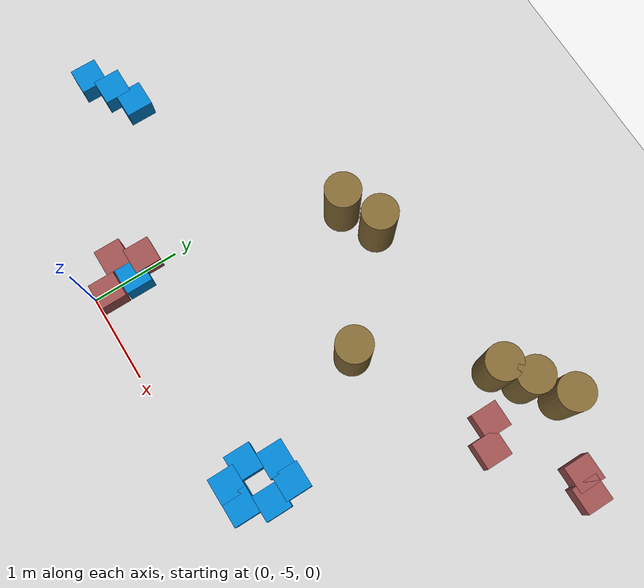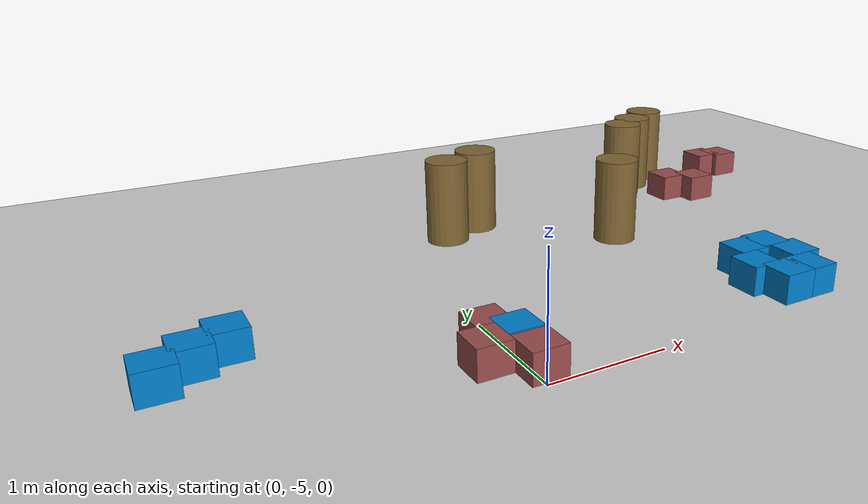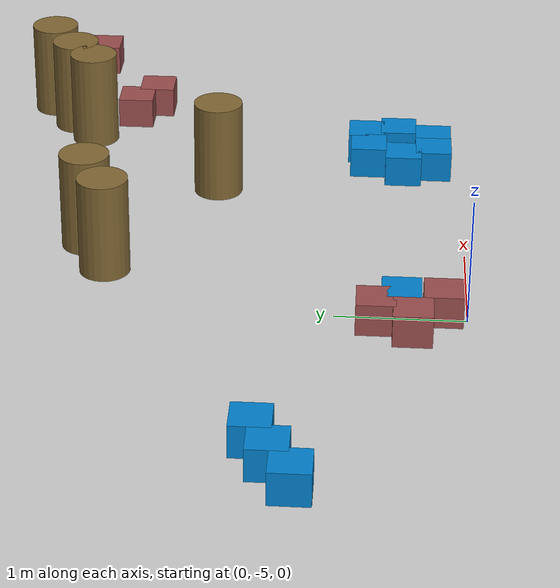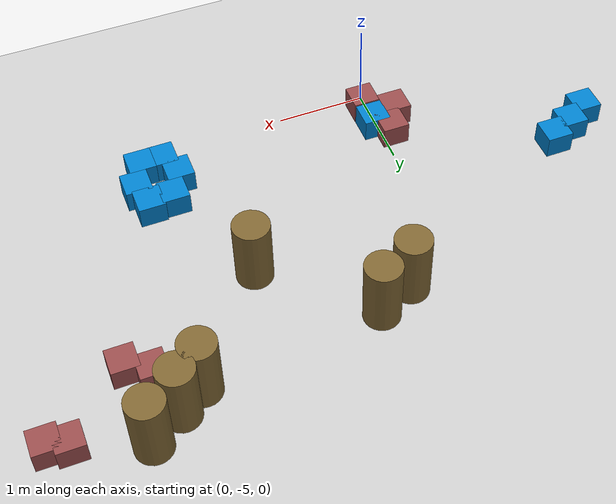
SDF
<sdf version="1.6">
 <world name="default">
  <model name="ground_plane">
   <static>1</static>
   <link name="link">
    <collision name="collision">
     <geometry><plane><normal>0 0 1</normal><size>100 100</size></plane></geometry>
     <surface><friction><ode><mu>100</mu><mu2>50</mu2></ode></friction></surface>
    </collision>
    <visual name="visual">
     <cast_shadows>0</cast_shadows>
     <geometry><plane><normal>0 0 1</normal><size>100 100</size></plane></geometry>
     <material>
      <script><uri>file://media/materials/scripts/gazebo.material</uri><name>Gazebo/Grey</name></script>
     </material>
    </visual>
   </link>
  </model>
  <model name="mini_cylinder_0_clone_0_clone_clone_clone_clone_5">
   <link name="link">
    <inertial>
     <mass>1</mass>
     <inertia><ixx>0.145833</ixx><ixy>0</ixy><ixz>0</ixz><iyy>0.145833</iyy><iyz>0</iyz><izz>0.125</izz></inertia>
    </inertial>
    <visual name="visual">
     <geometry><cylinder><radius>0.2</radius><length>0.8</length></cylinder></geometry>
     <material>
      <script><name>Gazebo/Grey</name><uri>file://media/materials/scripts/gazebo.material</uri></script>
      <shader type="vertex"><normal_map>__default__</normal_map></shader>
      <ambient>0.5 0.4 0.2 1</ambient>
      <diffuse>0.7 0.7 0.7 1</diffuse>
      <specular>0.01 0.01 0.01 1</specular>
      <emissive>0 0 0 1</emissive>
     </material>
    </visual>
    <collision name="collision">
     <geometry><cylinder><radius>0.2</radius><length>0.8</length></cylinder></geometry>
     <surface>
      <friction>
       <ode><mu>1</mu><mu2>1</mu2><fdir1>0 0 0</fdir1><slip1>0</slip1><slip2>0</slip2></ode>
       <torsional>
        <coefficient>1</coefficient>
        <patch_radius>0</patch_radius>
        <surface_radius>0</surface_radius>
        <use_patch_radius>1</use_patch_radius>
        <ode><slip>0</slip></ode>
       </torsional>
      </friction>
      <bounce><restitution_coefficient>0</restitution_coefficient><threshold>1e+06</threshold></bounce>
      <contact>
       <collide_without_contact>0</collide_without_contact>
       <collide_without_contact_bitmask>1</collide_without_contact_bitmask>
       <collide_bitmask>1</collide_bitmask>
       <ode>
        <soft_cfm>0</soft_cfm>
        <soft_erp>0.2</soft_erp>
        <kp>1e+13</kp>
        <kd>1</kd>
        <max_vel>0.01</max_vel>
        <min_depth>0</min_depth>
       </ode>
       <bullet>
        <split_impulse>1</split_impulse>
        <split_impulse_penetration_threshold>-0.01</split_impulse_penetration_threshold>
        <soft_cfm>0</soft_cfm>
        <soft_erp>0.2</soft_erp>
        <kp>1e+13</kp>
        <kd>1</kd>
       </bullet>
      </contact>
     </surface>
    </collision>
   </link>
   <static>1</static>
   <pose>0.594741 -2.19524 0.4 0 -0 0</pose>
  </model>
  <model name="mini_cylinder_0_clone_0_clone_clone_clone_clone_6">
   <link name="link">
    <inertial>
     <mass>1</mass>
     <inertia><ixx>0.145833</ixx><ixy>0</ixy><ixz>0</ixz><iyy>0.145833</iyy><iyz>0</iyz><izz>0.125</izz></inertia>
    </inertial>
    <visual name="visual">
     <geometry><cylinder><radius>0.2</radius><length>0.8</length></cylinder></geometry>
     <material>
      <script><name>Gazebo/Grey</name><uri>file://media/materials/scripts/gazebo.material</uri></script>
      <shader type="vertex"><normal_map>__default__</normal_map></shader>
      <ambient>0.5 0.4 0.2 1</ambient>
      <diffuse>0.7 0.7 0.7 1</diffuse>
      <specular>0.01 0.01 0.01 1</specular>
      <emissive>0 0 0 1</emissive>
     </material>
    </visual>
    <collision name="collision">
     <geometry><cylinder><radius>0.2</radius><length>0.8</length></cylinder></geometry>
     <surface>
      <friction>
       <ode><mu>1</mu><mu2>1</mu2><fdir1>0 0 0</fdir1><slip1>0</slip1><slip2>0</slip2></ode>
       <torsional>
        <coefficient>1</coefficient>
        <patch_radius>0</patch_radius>
        <surface_radius>0</surface_radius>
        <use_patch_radius>1</use_patch_radius>
        <ode><slip>0</slip></ode>
       </torsional>
      </friction>
      <bounce><restitution_coefficient>0</restitution_coefficient><threshold>1e+06</threshold></bounce>
      <contact>
       <collide_without_contact>0</collide_without_contact>
       <collide_without_contact_bitmask>1</collide_without_contact_bitmask>
       <collide_bitmask>1</collide_bitmask>
       <ode>
        <soft_cfm>0</soft_cfm>
        <soft_erp>0.2</soft_erp>
        <kp>1e+13</kp>
        <kd>1</kd>
        <max_vel>0.01</max_vel>
        <min_depth>0</min_depth>
       </ode>
       <bullet>
        <split_impulse>1</split_impulse>
        <split_impulse_penetration_threshold>-0.01</split_impulse_penetration_threshold>
        <soft_cfm>0</soft_cfm>
        <soft_erp>0.2</soft_erp>
        <kp>1e+13</kp>
        <kd>1</kd>
       </bullet>
      </contact>
     </surface>
    </collision>
   </link>
   <static>1</static>
   <pose>1 -2 0.4 0 -0 0</pose>
  </model>
  <model name="mini_cylinder_0_clone_0_clone_clone_clone_clone_7">
   <link name="link">
    <inertial>
     <mass>1</mass>
     <inertia><ixx>0.145833</ixx><ixy>0</ixy><ixz>0</ixz><iyy>0.145833</iyy><iyz>0</iyz><izz>0.125</izz></inertia>
    </inertial>
    <visual name="visual">
     <geometry><cylinder><radius>0.2</radius><length>0.8</length></cylinder></geometry>
     <material>
      <script><name>Gazebo/Grey</name><uri>file://media/materials/scripts/gazebo.material</uri></script>
      <shader type="vertex"><normal_map>__default__</normal_map></shader>
      <ambient>0.5 0.4 0.2 1</ambient>
      <diffuse>0.7 0.7 0.7 1</diffuse>
      <specular>0.01 0.01 0.01 1</specular>
      <emissive>0 0 0 1</emissive>
     </material>
    </visual>
    <collision name="collision">
     <geometry><cylinder><radius>0.2</radius><length>0.8</length></cylinder></geometry>
     <surface>
      <friction>
       <ode><mu>1</mu><mu2>1</mu2><fdir1>0 0 0</fdir1><slip1>0</slip1><slip2>0</slip2></ode>
       <torsional>
        <coefficient>1</coefficient>
        <patch_radius>0</patch_radius>
        <surface_radius>0</surface_radius>
        <use_patch_radius>1</use_patch_radius>
        <ode><slip>0</slip></ode>
       </torsional>
      </friction>
      <bounce><restitution_coefficient>0</restitution_coefficient><threshold>1e+06</threshold></bounce>
      <contact>
       <collide_without_contact>0</collide_without_contact>
       <collide_without_contact_bitmask>1</collide_without_contact_bitmask>
       <collide_bitmask>1</collide_bitmask>
       <ode>
        <soft_cfm>0</soft_cfm>
        <soft_erp>0.2</soft_erp>
        <kp>1e+13</kp>
        <kd>1</kd>
        <max_vel>0.01</max_vel>
        <min_depth>0</min_depth>
       </ode>
       <bullet>
        <split_impulse>1</split_impulse>
        <split_impulse_penetration_threshold>-0.01</split_impulse_penetration_threshold>
        <soft_cfm>0</soft_cfm>
        <soft_erp>0.2</soft_erp>
        <kp>1e+13</kp>
        <kd>1</kd>
       </bullet>
      </contact>
     </surface>
    </collision>
   </link>
   <static>1</static>
   <pose>2.95172 -1.80895 0.4 0 -0 0</pose>
  </model>
  <model name="mini_cylinder_0_clone_0_clone_clone_clone_clone_8">
   <link name="link">
    <inertial>
     <mass>1</mass>
     <inertia><ixx>0.145833</ixx><ixy>0</ixy><ixz>0</ixz><iyy>0.145833</iyy><iyz>0</iyz><izz>0.125</izz></inertia>
    </inertial>
    <visual name="visual">
     <geometry><cylinder><radius>0.2</radius><length>0.8</length></cylinder></geometry>
     <material>
      <script><name>Gazebo/Grey</name><uri>file://media/materials/scripts/gazebo.material</uri></script>
      <shader type="vertex"><normal_map>__default__</normal_map></shader>
      <ambient>0.5 0.4 0.2 1</ambient>
      <diffuse>0.7 0.7 0.7 1</diffuse>
      <specular>0.01 0.01 0.01 1</specular>
      <emissive>0 0 0 1</emissive>
     </material>
    </visual>
    <collision name="collision">
     <geometry><cylinder><radius>0.2</radius><length>0.8</length></cylinder></geometry>
     <surface>
      <friction>
       <ode><mu>1</mu><mu2>1</mu2><fdir1>0 0 0</fdir1><slip1>0</slip1><slip2>0</slip2></ode>
       <torsional>
        <coefficient>1</coefficient>
        <patch_radius>0</patch_radius>
        <surface_radius>0</surface_radius>
        <use_patch_radius>1</use_patch_radius>
        <ode><slip>0</slip></ode>
       </torsional>
      </friction>
      <bounce><restitution_coefficient>0</restitution_coefficient><threshold>1e+06</threshold></bounce>
      <contact>
       <collide_without_contact>0</collide_without_contact>
       <collide_without_contact_bitmask>1</collide_without_contact_bitmask>
       <collide_bitmask>1</collide_bitmask>
       <ode>
        <soft_cfm>0</soft_cfm>
        <soft_erp>0.2</soft_erp>
        <kp>1e+13</kp>
        <kd>1</kd>
        <max_vel>0.01</max_vel>
        <min_depth>0</min_depth>
       </ode>
       <bullet>
        <split_impulse>1</split_impulse>
        <split_impulse_penetration_threshold>-0.01</split_impulse_penetration_threshold>
        <soft_cfm>0</soft_cfm>
        <soft_erp>0.2</soft_erp>
        <kp>1e+13</kp>
        <kd>1</kd>
       </bullet>
      </contact>
     </surface>
    </collision>
   </link>
   <static>1</static>
   <pose>3.22202 -1.6158 0.4 0 -0 0</pose>
  </model>
  <model name="mini_cylinder_0_clone_0_clone_clone_clone_clone_9">
   <link name="link">
    <inertial>
     <mass>1</mass>
     <inertia><ixx>0.145833</ixx><ixy>0</ixy><ixz>0</ixz><iyy>0.145833</iyy><iyz>0</iyz><izz>0.125</izz></inertia>
    </inertial>
    <visual name="visual">
     <geometry><cylinder><radius>0.2</radius><length>0.8</length></cylinder></geometry>
     <material>
      <script><name>Gazebo/Grey</name><uri>file://media/materials/scripts/gazebo.material</uri></script>
      <shader type="vertex"><normal_map>__default__</normal_map></shader>
      <ambient>0.5 0.4 0.2 1</ambient>
      <diffuse>0.7 0.7 0.7 1</diffuse>
      <specular>0.01 0.01 0.01 1</specular>
      <emissive>0 0 0 1</emissive>
     </material>
    </visual>
    <collision name="collision">
     <geometry><cylinder><radius>0.2</radius><length>0.8</length></cylinder></geometry>
     <surface>
      <friction>
       <ode><mu>1</mu><mu2>1</mu2><fdir1>0 0 0</fdir1><slip1>0</slip1><slip2>0</slip2></ode>
       <torsional>
        <coefficient>1</coefficient>
        <patch_radius>0</patch_radius>
        <surface_radius>0</surface_radius>
        <use_patch_radius>1</use_patch_radius>
        <ode><slip>0</slip></ode>
       </torsional>
      </friction>
      <bounce><restitution_coefficient>0</restitution_coefficient><threshold>1e+06</threshold></bounce>
      <contact>
       <collide_without_contact>0</collide_without_contact>
       <collide_without_contact_bitmask>1</collide_without_contact_bitmask>
       <collide_bitmask>1</collide_bitmask>
       <ode>
        <soft_cfm>0</soft_cfm>
        <soft_erp>0.2</soft_erp>
        <kp>1e+13</kp>
        <kd>1</kd>
        <max_vel>0.01</max_vel>
        <min_depth>0</min_depth>
       </ode>
       <bullet>
        <split_impulse>1</split_impulse>
        <split_impulse_penetration_threshold>-0.01</split_impulse_penetration_threshold>
        <soft_cfm>0</soft_cfm>
        <soft_erp>0.2</soft_erp>
        <kp>1e+13</kp>
        <kd>1</kd>
       </bullet>
      </contact>
     </surface>
    </collision>
   </link>
   <static>1</static>
   <pose>3.56983 -1.38381 0.4 0 -0 0</pose>
  </model>
  <model name="mini_cylinder_0_clone_0_clone_clone_clone_clone_11">
   <link name="link">
    <inertial>
     <mass>1</mass>
     <inertia><ixx>0.145833</ixx><ixy>0</ixy><ixz>0</ixz><iyy>0.145833</iyy><iyz>0</iyz><izz>0.125</izz></inertia>
    </inertial>
    <visual name="visual">
     <geometry><cylinder><radius>0.2</radius><length>0.8</length></cylinder></geometry>
     <material>
      <script><name>Gazebo/Grey</name><uri>file://media/materials/scripts/gazebo.material</uri></script>
      <shader type="vertex"><normal_map>__default__</normal_map></shader>
      <ambient>0.5 0.4 0.2 1</ambient>
      <diffuse>0.7 0.7 0.7 1</diffuse>
      <specular>0.01 0.01 0.01 1</specular>
      <emissive>0 0 0 1</emissive>
     </material>
    </visual>
    <collision name="collision">
     <geometry><cylinder><radius>0.2</radius><length>0.8</length></cylinder></geometry>
     <surface>
      <friction>
       <ode><mu>1</mu><mu2>1</mu2><fdir1>0 0 0</fdir1><slip1>0</slip1><slip2>0</slip2></ode>
       <torsional>
        <coefficient>1</coefficient>
        <patch_radius>0</patch_radius>
        <surface_radius>0</surface_radius>
        <use_patch_radius>1</use_patch_radius>
        <ode><slip>0</slip></ode>
       </torsional>
      </friction>
      <bounce><restitution_coefficient>0</restitution_coefficient><threshold>1e+06</threshold></bounce>
      <contact>
       <collide_without_contact>0</collide_without_contact>
       <collide_without_contact_bitmask>1</collide_without_contact_bitmask>
       <collide_bitmask>1</collide_bitmask>
       <ode>
        <soft_cfm>0</soft_cfm>
        <soft_erp>0.2</soft_erp>
        <kp>1e+13</kp>
        <kd>1</kd>
        <max_vel>0.01</max_vel>
        <min_depth>0</min_depth>
       </ode>
       <bullet>
        <split_impulse>1</split_impulse>
        <split_impulse_penetration_threshold>-0.01</split_impulse_penetration_threshold>
        <soft_cfm>0</soft_cfm>
        <soft_erp>0.2</soft_erp>
        <kp>1e+13</kp>
        <kd>1</kd>
       </bullet>
      </contact>
     </surface>
    </collision>
   </link>
   <static>1</static>
   <pose>2.02446 -2.96819 0.4 0 -0 0</pose>
  </model>
  <model name="unit_box_0.3_red_clone_clone_2">
   <link name="link">
    <inertial>
     <mass>1</mass>
     <inertia>
      <ixx>0.166667</ixx>
      <ixy>0</ixy>
      <ixz>0</ixz>
      <iyy>0.166667</iyy>
      <iyz>0</iyz>
      <izz>0.166667</izz>
     </inertia>
    </inertial>
    <visual name="visual">
     <geometry><box><size>0.3 0.3 0.5</size></box></geometry>
     <material>
      <script><name>Gazebo/Grey</name><uri>file://media/materials/scripts/gazebo.material</uri></script>
      <shader type="pixel"><normal_map>__default__</normal_map></shader>
      <ambient>0.6 0.3 0.3 1</ambient>
      <diffuse>0.7 0.7 0.7 1</diffuse>
      <specular>0.01 0.01 0.01 1</specular>
      <emissive>0 0 0 1</emissive>
     </material>
    </visual>
    <collision name="collision">
     <geometry><box><size>0.3 0.3 0.5</size></box></geometry>
     <surface>
      <friction>
       <ode><mu>1</mu><mu2>1</mu2><fdir1>0 0 0</fdir1><slip1>0</slip1><slip2>0</slip2></ode>
       <torsional>
        <coefficient>1</coefficient>
        <patch_radius>0</patch_radius>
        <surface_radius>0</surface_radius>
        <use_patch_radius>1</use_patch_radius>
        <ode><slip>0</slip></ode>
       </torsional>
      </friction>
      <bounce><restitution_coefficient>0</restitution_coefficient><threshold>1e+06</threshold></bounce>
      <contact>
       <collide_without_contact>0</collide_without_contact>
       <collide_without_contact_bitmask>1</collide_without_contact_bitmask>
       <collide_bitmask>1</collide_bitmask>
       <ode>
        <soft_cfm>0</soft_cfm>
        <soft_erp>0.2</soft_erp>
        <kp>1e+13</kp>
        <kd>1</kd>
        <max_vel>0.01</max_vel>
        <min_depth>0</min_depth>
       </ode>
       <bullet>
        <split_impulse>1</split_impulse>
        <split_impulse_penetration_threshold>-0.01</split_impulse_penetration_threshold>
        <soft_cfm>0</soft_cfm>
        <soft_erp>0.2</soft_erp>
        <kp>1e+13</kp>
        <kd>1</kd>
       </bullet>
      </contact>
     </surface>
    </collision>
   </link>
   <static>0</static>
   <pose>3.35892 -2.13285 0 0 -0 0</pose>
  </model>
  <model name="unit_box_0.3_red_clone_clone_3">
   <link name="link">
    <inertial>
     <mass>1</mass>
     <inertia>
      <ixx>0.166667</ixx>
      <ixy>0</ixy>
      <ixz>0</ixz>
      <iyy>0.166667</iyy>
      <iyz>0</iyz>
      <izz>0.166667</izz>
     </inertia>
    </inertial>
    <visual name="visual">
     <geometry><box><size>0.3 0.3 0.5</size></box></geometry>
     <material>
      <script><name>Gazebo/Grey</name><uri>file://media/materials/scripts/gazebo.material</uri></script>
      <shader type="pixel"><normal_map>__default__</normal_map></shader>
      <ambient>0.6 0.3 0.3 1</ambient>
      <diffuse>0.7 0.7 0.7 1</diffuse>
      <specular>0.01 0.01 0.01 1</specular>
      <emissive>0 0 0 1</emissive>
     </material>
    </visual>
    <collision name="collision">
     <geometry><box><size>0.3 0.3 0.5</size></box></geometry>
     <surface>
      <friction>
       <ode><mu>1</mu><mu2>1</mu2><fdir1>0 0 0</fdir1><slip1>0</slip1><slip2>0</slip2></ode>
       <torsional>
        <coefficient>1</coefficient>
        <patch_radius>0</patch_radius>
        <surface_radius>0</surface_radius>
        <use_patch_radius>1</use_patch_radius>
        <ode><slip>0</slip></ode>
       </torsional>
      </friction>
      <bounce><restitution_coefficient>0</restitution_coefficient><threshold>1e+06</threshold></bounce>
      <contact>
       <collide_without_contact>0</collide_without_contact>
       <collide_without_contact_bitmask>1</collide_without_contact_bitmask>
       <collide_bitmask>1</collide_bitmask>
       <ode>
        <soft_cfm>0</soft_cfm>
        <soft_erp>0.2</soft_erp>
        <kp>1e+13</kp>
        <kd>1</kd>
        <max_vel>0.01</max_vel>
        <min_depth>0</min_depth>
       </ode>
       <bullet>
        <split_impulse>1</split_impulse>
        <split_impulse_penetration_threshold>-0.01</split_impulse_penetration_threshold>
        <soft_cfm>0</soft_cfm>
        <soft_erp>0.2</soft_erp>
        <kp>1e+13</kp>
        <kd>1</kd>
       </bullet>
      </contact>
     </surface>
    </collision>
   </link>
   <static>0</static>
   <pose>3.60477 -2.29425 0 0 -0 0</pose>
  </model>
  <model name="unit_box_0.3_red_clone_clone_4">
   <link name="link">
    <inertial>
     <mass>1</mass>
     <inertia>
      <ixx>0.166667</ixx>
      <ixy>0</ixy>
      <ixz>0</ixz>
      <iyy>0.166667</iyy>
      <iyz>0</iyz>
      <izz>0.166667</izz>
     </inertia>
    </inertial>
    <visual name="visual">
     <geometry><box><size>0.3 0.3 0.5</size></box></geometry>
     <material>
      <script><name>Gazebo/Grey</name><uri>file://media/materials/scripts/gazebo.material</uri></script>
      <shader type="pixel"><normal_map>__default__</normal_map></shader>
      <ambient>0.6 0.3 0.3 1</ambient>
      <diffuse>0.7 0.7 0.7 1</diffuse>
      <specular>0.01 0.01 0.01 1</specular>
      <emissive>0 0 0 1</emissive>
     </material>
    </visual>
    <collision name="collision">
     <geometry><box><size>0.3 0.3 0.5</size></box></geometry>
     <surface>
      <friction>
       <ode><mu>1</mu><mu2>1</mu2><fdir1>0 0 0</fdir1><slip1>0</slip1><slip2>0</slip2></ode>
       <torsional>
        <coefficient>1</coefficient>
        <patch_radius>0</patch_radius>
        <surface_radius>0</surface_radius>
        <use_patch_radius>1</use_patch_radius>
        <ode><slip>0</slip></ode>
       </torsional>
      </friction>
      <bounce><restitution_coefficient>0</restitution_coefficient><threshold>1e+06</threshold></bounce>
      <contact>
       <collide_without_contact>0</collide_without_contact>
       <collide_without_contact_bitmask>1</collide_without_contact_bitmask>
       <collide_bitmask>1</collide_bitmask>
       <ode>
        <soft_cfm>0</soft_cfm>
        <soft_erp>0.2</soft_erp>
        <kp>1e+13</kp>
        <kd>1</kd>
        <max_vel>0.01</max_vel>
        <min_depth>0</min_depth>
       </ode>
       <bullet>
        <split_impulse>1</split_impulse>
        <split_impulse_penetration_threshold>-0.01</split_impulse_penetration_threshold>
        <soft_cfm>0</soft_cfm>
        <soft_erp>0.2</soft_erp>
        <kp>1e+13</kp>
        <kd>1</kd>
       </bullet>
      </contact>
     </surface>
    </collision>
   </link>
   <static>0</static>
   <pose>4.50999 -1.69391 0 0 -0 0</pose>
  </model>
  <model name="unit_box_0.3_red_clone_clone_5">
   <link name="link">
    <inertial>
     <mass>1</mass>
     <inertia>
      <ixx>0.166667</ixx>
      <ixy>0</ixy>
      <ixz>0</ixz>
      <iyy>0.166667</iyy>
      <iyz>0</iyz>
      <izz>0.166667</izz>
     </inertia>
    </inertial>
    <visual name="visual">
     <geometry><box><size>0.3 0.3 0.5</size></box></geometry>
     <material>
      <script><name>Gazebo/Grey</name><uri>file://media/materials/scripts/gazebo.material</uri></script>
      <shader type="pixel"><normal_map>__default__</normal_map></shader>
      <ambient>0.6 0.3 0.3 1</ambient>
      <diffuse>0.7 0.7 0.7 1</diffuse>
      <specular>0.01 0.01 0.01 1</specular>
      <emissive>0 0 0 1</emissive>
     </material>
    </visual>
    <collision name="collision">
     <geometry><box><size>0.3 0.3 0.5</size></box></geometry>
     <surface>
      <friction>
       <ode><mu>1</mu><mu2>1</mu2><fdir1>0 0 0</fdir1><slip1>0</slip1><slip2>0</slip2></ode>
       <torsional>
        <coefficient>1</coefficient>
        <patch_radius>0</patch_radius>
        <surface_radius>0</surface_radius>
        <use_patch_radius>1</use_patch_radius>
        <ode><slip>0</slip></ode>
       </torsional>
      </friction>
      <bounce><restitution_coefficient>0</restitution_coefficient><threshold>1e+06</threshold></bounce>
      <contact>
       <collide_without_contact>0</collide_without_contact>
       <collide_without_contact_bitmask>1</collide_without_contact_bitmask>
       <collide_bitmask>1</collide_bitmask>
       <ode>
        <soft_cfm>0</soft_cfm>
        <soft_erp>0.2</soft_erp>
        <kp>1e+13</kp>
        <kd>1</kd>
        <max_vel>0.01</max_vel>
        <min_depth>0</min_depth>
       </ode>
       <bullet>
        <split_impulse>1</split_impulse>
        <split_impulse_penetration_threshold>-0.01</split_impulse_penetration_threshold>
        <soft_cfm>0</soft_cfm>
        <soft_erp>0.2</soft_erp>
        <kp>1e+13</kp>
        <kd>1</kd>
       </bullet>
      </contact>
     </surface>
    </collision>
   </link>
   <static>0</static>
   <pose>4.29972 -1.63708 0 0 -0 0</pose>
  </model>
  <model name="unit_box_0.3_grue_clone_0">
   <link name="link">
    <inertial>
     <mass>1</mass>
     <inertia>
      <ixx>0.166667</ixx>
      <ixy>0</ixy>
      <ixz>0</ixz>
      <iyy>0.166667</iyy>
      <iyz>0</iyz>
      <izz>0.166667</izz>
     </inertia>
    </inertial>
    <visual name="visual">
     <geometry><box><size>0.3 0.3 0.5</size></box></geometry>
     <material>
      <script><name>Gazebo/Grey</name><uri>file://media/materials/scripts/gazebo.material</uri></script>
      <shader type="pixel"><normal_map>__default__</normal_map></shader>
      <ambient>0 0.5 0.8 1</ambient>
      <diffuse>0.7 0.7 0.7 1</diffuse>
      <specular>0.01 0.01 0.01 1</specular>
      <emissive>0 0 0 1</emissive>
     </material>
    </visual>
    <collision name="collision">
     <geometry><box><size>0.3 0.3 0.5</size></box></geometry>
     <surface>
      <friction>
       <ode><mu>1</mu><mu2>1</mu2><fdir1>0 0 0</fdir1><slip1>0</slip1><slip2>0</slip2></ode>
       <torsional>
        <coefficient>1</coefficient>
        <patch_radius>0</patch_radius>
        <surface_radius>0</surface_radius>
        <use_patch_radius>1</use_patch_radius>
        <ode><slip>0</slip></ode>
       </torsional>
      </friction>
      <bounce><restitution_coefficient>0</restitution_coefficient><threshold>1e+06</threshold></bounce>
      <contact>
       <collide_without_contact>0</collide_without_contact>
       <collide_without_contact_bitmask>1</collide_without_contact_bitmask>
       <collide_bitmask>1</collide_bitmask>
       <ode>
        <soft_cfm>0</soft_cfm>
        <soft_erp>0.2</soft_erp>
        <kp>1e+13</kp>
        <kd>1</kd>
        <max_vel>0.01</max_vel>
        <min_depth>0</min_depth>
       </ode>
       <bullet>
        <split_impulse>1</split_impulse>
        <split_impulse_penetration_threshold>-0.01</split_impulse_penetration_threshold>
        <soft_cfm>0</soft_cfm>
        <soft_erp>0.2</soft_erp>
        <kp>1e+13</kp>
        <kd>1</kd>
       </bullet>
      </contact>
     </surface>
    </collision>
   </link>
   <static>0</static>
   <pose>-1.75212 -3.49715 0 0 -0 0</pose>
  </model>
  <model name="unit_box_0.3_grue_clone_1">
   <link name="link">
    <inertial>
     <mass>1</mass>
     <inertia>
      <ixx>0.166667</ixx>
      <ixy>0</ixy>
      <ixz>0</ixz>
      <iyy>0.166667</iyy>
      <iyz>0</iyz>
      <izz>0.166667</izz>
     </inertia>
    </inertial>
    <visual name="visual">
     <geometry><box><size>0.3 0.3 0.5</size></box></geometry>
     <material>
      <script><name>Gazebo/Grey</name><uri>file://media/materials/scripts/gazebo.material</uri></script>
      <shader type="pixel"><normal_map>__default__</normal_map></shader>
      <ambient>0 0.5 0.8 1</ambient>
      <diffuse>0.7 0.7 0.7 1</diffuse>
      <specular>0.01 0.01 0.01 1</specular>
      <emissive>0 0 0 1</emissive>
     </material>
    </visual>
    <collision name="collision">
     <geometry><box><size>0.3 0.3 0.5</size></box></geometry>
     <surface>
      <friction>
       <ode><mu>1</mu><mu2>1</mu2><fdir1>0 0 0</fdir1><slip1>0</slip1><slip2>0</slip2></ode>
       <torsional>
        <coefficient>1</coefficient>
        <patch_radius>0</patch_radius>
        <surface_radius>0</surface_radius>
        <use_patch_radius>1</use_patch_radius>
        <ode><slip>0</slip></ode>
       </torsional>
      </friction>
      <bounce><restitution_coefficient>0</restitution_coefficient><threshold>1e+06</threshold></bounce>
      <contact>
       <collide_without_contact>0</collide_without_contact>
       <collide_without_contact_bitmask>1</collide_without_contact_bitmask>
       <collide_bitmask>1</collide_bitmask>
       <ode>
        <soft_cfm>0</soft_cfm>
        <soft_erp>0.2</soft_erp>
        <kp>1e+13</kp>
        <kd>1</kd>
        <max_vel>0.01</max_vel>
        <min_depth>0</min_depth>
       </ode>
       <bullet>
        <split_impulse>1</split_impulse>
        <split_impulse_penetration_threshold>-0.01</split_impulse_penetration_threshold>
        <soft_cfm>0</soft_cfm>
        <soft_erp>0.2</soft_erp>
        <kp>1e+13</kp>
        <kd>1</kd>
       </bullet>
      </contact>
     </surface>
    </collision>
   </link>
   <static>0</static>
   <pose>-2.01898 -3.62701 0 0 -0 0</pose>
  </model>
  <model name="unit_box_0.3_grue_clone_2">
   <link name="link">
    <inertial>
     <mass>1</mass>
     <inertia>
      <ixx>0.166667</ixx>
      <ixy>0</ixy>
      <ixz>0</ixz>
      <iyy>0.166667</iyy>
      <iyz>0</iyz>
      <izz>0.166667</izz>
     </inertia>
    </inertial>
    <visual name="visual">
     <geometry><box><size>0.3 0.3 0.5</size></box></geometry>
     <material>
      <script><name>Gazebo/Grey</name><uri>file://media/materials/scripts/gazebo.material</uri></script>
      <shader type="pixel"><normal_map>__default__</normal_map></shader>
      <ambient>0 0.5 0.8 1</ambient>
      <diffuse>0.7 0.7 0.7 1</diffuse>
      <specular>0.01 0.01 0.01 1</specular>
      <emissive>0 0 0 1</emissive>
     </material>
    </visual>
    <collision name="collision">
     <geometry><box><size>0.3 0.3 0.5</size></box></geometry>
     <surface>
      <friction>
       <ode><mu>1</mu><mu2>1</mu2><fdir1>0 0 0</fdir1><slip1>0</slip1><slip2>0</slip2></ode>
       <torsional>
        <coefficient>1</coefficient>
        <patch_radius>0</patch_radius>
        <surface_radius>0</surface_radius>
        <use_patch_radius>1</use_patch_radius>
        <ode><slip>0</slip></ode>
       </torsional>
      </friction>
      <bounce><restitution_coefficient>0</restitution_coefficient><threshold>1e+06</threshold></bounce>
      <contact>
       <collide_without_contact>0</collide_without_contact>
       <collide_without_contact_bitmask>1</collide_without_contact_bitmask>
       <collide_bitmask>1</collide_bitmask>
       <ode>
        <soft_cfm>0</soft_cfm>
        <soft_erp>0.2</soft_erp>
        <kp>1e+13</kp>
        <kd>1</kd>
        <max_vel>0.01</max_vel>
        <min_depth>0</min_depth>
       </ode>
       <bullet>
        <split_impulse>1</split_impulse>
        <split_impulse_penetration_threshold>-0.01</split_impulse_penetration_threshold>
        <soft_cfm>0</soft_cfm>
        <soft_erp>0.2</soft_erp>
        <kp>1e+13</kp>
        <kd>1</kd>
       </bullet>
      </contact>
     </surface>
    </collision>
   </link>
   <static>0</static>
   <pose>-2.27395 -3.79167 0 0 -0 0</pose>
  </model>
  <model name="unit_box_0.3_grue_clone_12">
   <link name="link">
    <inertial>
     <mass>1</mass>
     <inertia>
      <ixx>0.166667</ixx>
      <ixy>0</ixy>
      <ixz>0</ixz>
      <iyy>0.166667</iyy>
      <iyz>0</iyz>
      <izz>0.166667</izz>
     </inertia>
    </inertial>
    <visual name="visual">
     <geometry><box><size>0.3 0.3 0.5</size></box></geometry>
     <material>
      <script><name>Gazebo/Grey</name><uri>file://media/materials/scripts/gazebo.material</uri></script>
      <shader type="pixel"><normal_map>__default__</normal_map></shader>
      <ambient>0 0.5 0.8 1</ambient>
      <diffuse>0.7 0.7 0.7 1</diffuse>
      <specular>0.01 0.01 0.01 1</specular>
      <emissive>0 0 0 1</emissive>
     </material>
    </visual>
    <collision name="collision">
     <geometry><box><size>0.3 0.3 0.5</size></box></geometry>
     <surface>
      <friction>
       <ode><mu>1</mu><mu2>1</mu2><fdir1>0 0 0</fdir1><slip1>0</slip1><slip2>0</slip2></ode>
       <torsional>
        <coefficient>1</coefficient>
        <patch_radius>0</patch_radius>
        <surface_radius>0</surface_radius>
        <use_patch_radius>1</use_patch_radius>
        <ode><slip>0</slip></ode>
       </torsional>
      </friction>
      <bounce><restitution_coefficient>0</restitution_coefficient><threshold>1e+06</threshold></bounce>
      <contact>
       <collide_without_contact>0</collide_without_contact>
       <collide_without_contact_bitmask>1</collide_without_contact_bitmask>
       <collide_bitmask>1</collide_bitmask>
       <ode>
        <soft_cfm>0</soft_cfm>
        <soft_erp>0.2</soft_erp>
        <kp>1e+13</kp>
        <kd>1</kd>
        <max_vel>0.01</max_vel>
        <min_depth>0</min_depth>
       </ode>
       <bullet>
        <split_impulse>1</split_impulse>
        <split_impulse_penetration_threshold>-0.01</split_impulse_penetration_threshold>
        <soft_cfm>0</soft_cfm>
        <soft_erp>0.2</soft_erp>
        <kp>1e+13</kp>
        <kd>1</kd>
       </bullet>
      </contact>
     </surface>
    </collision>
   </link>
   <static>0</static>
   <pose>2.73129 -4.75947 0 0 -0 0</pose>
  </model>
  <model name="unit_box_0.3_grue_clone_13">
   <link name="link">
    <inertial>
     <mass>1</mass>
     <inertia>
      <ixx>0.166667</ixx>
      <ixy>0</ixy>
      <ixz>0</ixz>
      <iyy>0.166667</iyy>
      <iyz>0</iyz>
      <izz>0.166667</izz>
     </inertia>
    </inertial>
    <visual name="visual">
     <geometry><box><size>0.3 0.3 0.5</size></box></geometry>
     <material>
      <script><name>Gazebo/Grey</name><uri>file://media/materials/scripts/gazebo.material</uri></script>
      <shader type="pixel"><normal_map>__default__</normal_map></shader>
      <ambient>0 0.5 0.8 1</ambient>
      <diffuse>0.7 0.7 0.7 1</diffuse>
      <specular>0.01 0.01 0.01 1</specular>
      <emissive>0 0 0 1</emissive>
     </material>
    </visual>
    <collision name="collision">
     <geometry><box><size>0.3 0.3 0.5</size></box></geometry>
     <surface>
      <friction>
       <ode><mu>1</mu><mu2>1</mu2><fdir1>0 0 0</fdir1><slip1>0</slip1><slip2>0</slip2></ode>
       <torsional>
        <coefficient>1</coefficient>
        <patch_radius>0</patch_radius>
        <surface_radius>0</surface_radius>
        <use_patch_radius>1</use_patch_radius>
        <ode><slip>0</slip></ode>
       </torsional>
      </friction>
      <bounce><restitution_coefficient>0</restitution_coefficient><threshold>1e+06</threshold></bounce>
      <contact>
       <collide_without_contact>0</collide_without_contact>
       <collide_without_contact_bitmask>1</collide_without_contact_bitmask>
       <collide_bitmask>1</collide_bitmask>
       <ode>
        <soft_cfm>0</soft_cfm>
        <soft_erp>0.2</soft_erp>
        <kp>1e+13</kp>
        <kd>1</kd>
        <max_vel>0.01</max_vel>
        <min_depth>0</min_depth>
       </ode>
       <bullet>
        <split_impulse>1</split_impulse>
        <split_impulse_penetration_threshold>-0.01</split_impulse_penetration_threshold>
        <soft_cfm>0</soft_cfm>
        <soft_erp>0.2</soft_erp>
        <kp>1e+13</kp>
        <kd>1</kd>
       </bullet>
      </contact>
     </surface>
    </collision>
   </link>
   <static>0</static>
   <pose>2.85567 -4.46325 0 0 -0 0</pose>
  </model>
  <model name="unit_box_0.3_grue_clone_14">
   <link name="link">
    <inertial>
     <mass>1</mass>
     <inertia>
      <ixx>0.166667</ixx>
      <ixy>0</ixy>
      <ixz>0</ixz>
      <iyy>0.166667</iyy>
      <iyz>0</iyz>
      <izz>0.166667</izz>
     </inertia>
    </inertial>
    <visual name="visual">
     <geometry><box><size>0.3 0.3 0.5</size></box></geometry>
     <material>
      <script><name>Gazebo/Grey</name><uri>file://media/materials/scripts/gazebo.material</uri></script>
      <shader type="pixel"><normal_map>__default__</normal_map></shader>
      <ambient>0 0.5 0.8 1</ambient>
      <diffuse>0.7 0.7 0.7 1</diffuse>
      <specular>0.01 0.01 0.01 1</specular>
      <emissive>0 0 0 1</emissive>
     </material>
    </visual>
    <collision name="collision">
     <geometry><box><size>0.3 0.3 0.5</size></box></geometry>
     <surface>
      <friction>
       <ode><mu>1</mu><mu2>1</mu2><fdir1>0 0 0</fdir1><slip1>0</slip1><slip2>0</slip2></ode>
       <torsional>
        <coefficient>1</coefficient>
        <patch_radius>0</patch_radius>
        <surface_radius>0</surface_radius>
        <use_patch_radius>1</use_patch_radius>
        <ode><slip>0</slip></ode>
       </torsional>
      </friction>
      <bounce><restitution_coefficient>0</restitution_coefficient><threshold>1e+06</threshold></bounce>
      <contact>
       <collide_without_contact>0</collide_without_contact>
       <collide_without_contact_bitmask>1</collide_without_contact_bitmask>
       <collide_bitmask>1</collide_bitmask>
       <ode>
        <soft_cfm>0</soft_cfm>
        <soft_erp>0.2</soft_erp>
        <kp>1e+13</kp>
        <kd>1</kd>
        <max_vel>0.01</max_vel>
        <min_depth>0</min_depth>
       </ode>
       <bullet>
        <split_impulse>1</split_impulse>
        <split_impulse_penetration_threshold>-0.01</split_impulse_penetration_threshold>
        <soft_cfm>0</soft_cfm>
        <soft_erp>0.2</soft_erp>
        <kp>1e+13</kp>
        <kd>1</kd>
       </bullet>
      </contact>
     </surface>
    </collision>
   </link>
   <static>0</static>
   <pose>2.47818 -4.76097 0 0 -0 0</pose>
  </model>
  <model name="unit_box_0.3_grue_clone_15">
   <link name="link">
    <inertial>
     <mass>1</mass>
     <inertia>
      <ixx>0.166667</ixx>
      <ixy>0</ixy>
      <ixz>0</ixz>
      <iyy>0.166667</iyy>
      <iyz>0</iyz>
      <izz>0.166667</izz>
     </inertia>
    </inertial>
    <visual name="visual">
     <geometry><box><size>0.3 0.3 0.5</size></box></geometry>
     <material>
      <script><name>Gazebo/Grey</name><uri>file://media/materials/scripts/gazebo.material</uri></script>
      <shader type="pixel"><normal_map>__default__</normal_map></shader>
      <ambient>0 0.5 0.8 1</ambient>
      <diffuse>0.7 0.7 0.7 1</diffuse>
      <specular>0.01 0.01 0.01 1</specular>
      <emissive>0 0 0 1</emissive>
     </material>
    </visual>
    <collision name="collision">
     <geometry><box><size>0.3 0.3 0.5</size></box></geometry>
     <surface>
      <friction>
       <ode><mu>1</mu><mu2>1</mu2><fdir1>0 0 0</fdir1><slip1>0</slip1><slip2>0</slip2></ode>
       <torsional>
        <coefficient>1</coefficient>
        <patch_radius>0</patch_radius>
        <surface_radius>0</surface_radius>
        <use_patch_radius>1</use_patch_radius>
        <ode><slip>0</slip></ode>
       </torsional>
      </friction>
      <bounce><restitution_coefficient>0</restitution_coefficient><threshold>1e+06</threshold></bounce>
      <contact>
       <collide_without_contact>0</collide_without_contact>
       <collide_without_contact_bitmask>1</collide_without_contact_bitmask>
       <collide_bitmask>1</collide_bitmask>
       <ode>
        <soft_cfm>0</soft_cfm>
        <soft_erp>0.2</soft_erp>
        <kp>1e+13</kp>
        <kd>1</kd>
        <max_vel>0.01</max_vel>
        <min_depth>0</min_depth>
       </ode>
       <bullet>
        <split_impulse>1</split_impulse>
        <split_impulse_penetration_threshold>-0.01</split_impulse_penetration_threshold>
        <soft_cfm>0</soft_cfm>
        <soft_erp>0.2</soft_erp>
        <kp>1e+13</kp>
        <kd>1</kd>
       </bullet>
      </contact>
     </surface>
    </collision>
   </link>
   <static>0</static>
   <pose>2.37097 -4.50872 0 0 -0 0</pose>
  </model>
  <model name="unit_box_0.3_grue_clone_16">
   <link name="link">
    <inertial>
     <mass>1</mass>
     <inertia>
      <ixx>0.166667</ixx>
      <ixy>0</ixy>
      <ixz>0</ixz>
      <iyy>0.166667</iyy>
      <iyz>0</iyz>
      <izz>0.166667</izz>
     </inertia>
    </inertial>
    <visual name="visual">
     <geometry><box><size>0.3 0.3 0.5</size></box></geometry>
     <material>
      <script><name>Gazebo/Grey</name><uri>file://media/materials/scripts/gazebo.material</uri></script>
      <shader type="pixel"><normal_map>__default__</normal_map></shader>
      <ambient>0 0.5 0.8 1</ambient>
      <diffuse>0.7 0.7 0.7 1</diffuse>
      <specular>0.01 0.01 0.01 1</specular>
      <emissive>0 0 0 1</emissive>
     </material>
    </visual>
    <collision name="collision">
     <geometry><box><size>0.3 0.3 0.5</size></box></geometry>
     <surface>
      <friction>
       <ode><mu>1</mu><mu2>1</mu2><fdir1>0 0 0</fdir1><slip1>0</slip1><slip2>0</slip2></ode>
       <torsional>
        <coefficient>1</coefficient>
        <patch_radius>0</patch_radius>
        <surface_radius>0</surface_radius>
        <use_patch_radius>1</use_patch_radius>
        <ode><slip>0</slip></ode>
       </torsional>
      </friction>
      <bounce><restitution_coefficient>0</restitution_coefficient><threshold>1e+06</threshold></bounce>
      <contact>
       <collide_without_contact>0</collide_without_contact>
       <collide_without_contact_bitmask>1</collide_without_contact_bitmask>
       <collide_bitmask>1</collide_bitmask>
       <ode>
        <soft_cfm>0</soft_cfm>
        <soft_erp>0.2</soft_erp>
        <kp>1e+13</kp>
        <kd>1</kd>
        <max_vel>0.01</max_vel>
        <min_depth>0</min_depth>
       </ode>
       <bullet>
        <split_impulse>1</split_impulse>
        <split_impulse_penetration_threshold>-0.01</split_impulse_penetration_threshold>
        <soft_cfm>0</soft_cfm>
        <soft_erp>0.2</soft_erp>
        <kp>1e+13</kp>
        <kd>1</kd>
       </bullet>
      </contact>
     </surface>
    </collision>
   </link>
   <static>0</static>
   <pose>2.79048 -4.18963 0 0 -0 0</pose>
  </model>
  <model name="unit_box_0.3_grue_clone_17">
   <link name="link">
    <inertial>
     <mass>1</mass>
     <inertia>
      <ixx>0.166667</ixx>
      <ixy>0</ixy>
      <ixz>0</ixz>
      <iyy>0.166667</iyy>
      <iyz>0</iyz>
      <izz>0.166667</izz>
     </inertia>
    </inertial>
    <visual name="visual">
     <geometry><box><size>0.3 0.3 0.5</size></box></geometry>
     <material>
      <script><name>Gazebo/Grey</name><uri>file://media/materials/scripts/gazebo.material</uri></script>
      <shader type="pixel"><normal_map>__default__</normal_map></shader>
      <ambient>0 0.5 0.8 1</ambient>
      <diffuse>0.7 0.7 0.7 1</diffuse>
      <specular>0.01 0.01 0.01 1</specular>
      <emissive>0 0 0 1</emissive>
     </material>
    </visual>
    <collision name="collision">
     <geometry><box><size>0.3 0.3 0.5</size></box></geometry>
     <surface>
      <friction>
       <ode><mu>1</mu><mu2>1</mu2><fdir1>0 0 0</fdir1><slip1>0</slip1><slip2>0</slip2></ode>
       <torsional>
        <coefficient>1</coefficient>
        <patch_radius>0</patch_radius>
        <surface_radius>0</surface_radius>
        <use_patch_radius>1</use_patch_radius>
        <ode><slip>0</slip></ode>
       </torsional>
      </friction>
      <bounce><restitution_coefficient>0</restitution_coefficient><threshold>1e+06</threshold></bounce>
      <contact>
       <collide_without_contact>0</collide_without_contact>
       <collide_without_contact_bitmask>1</collide_without_contact_bitmask>
       <collide_bitmask>1</collide_bitmask>
       <ode>
        <soft_cfm>0</soft_cfm>
        <soft_erp>0.2</soft_erp>
        <kp>1e+13</kp>
        <kd>1</kd>
        <max_vel>0.01</max_vel>
        <min_depth>0</min_depth>
       </ode>
       <bullet>
        <split_impulse>1</split_impulse>
        <split_impulse_penetration_threshold>-0.01</split_impulse_penetration_threshold>
        <soft_cfm>0</soft_cfm>
        <soft_erp>0.2</soft_erp>
        <kp>1e+13</kp>
        <kd>1</kd>
       </bullet>
      </contact>
     </surface>
    </collision>
   </link>
   <static>0</static>
   <pose>2.51652 -4.21263 0 0 -0 0</pose>
  </model>
  <model name="unit_box_0.3_grue_clone_18">
   <link name="link">
    <inertial>
     <mass>1</mass>
     <inertia>
      <ixx>0.166667</ixx>
      <ixy>0</ixy>
      <ixz>0</ixz>
      <iyy>0.166667</iyy>
      <iyz>0</iyz>
      <izz>0.166667</izz>
     </inertia>
    </inertial>
    <visual name="visual">
     <geometry><box><size>0.3 0.3 0.5</size></box></geometry>
     <material>
      <script><name>Gazebo/Grey</name><uri>file://media/materials/scripts/gazebo.material</uri></script>
      <shader type="pixel"><normal_map>__default__</normal_map></shader>
      <ambient>0 0.5 0.8 1</ambient>
      <diffuse>0.7 0.7 0.7 1</diffuse>
      <specular>0.01 0.01 0.01 1</specular>
      <emissive>0 0 0 1</emissive>
     </material>
    </visual>
    <collision name="collision">
     <geometry><box><size>0.3 0.3 0.5</size></box></geometry>
     <surface>
      <friction>
       <ode><mu>1</mu><mu2>1</mu2><fdir1>0 0 0</fdir1><slip1>0</slip1><slip2>0</slip2></ode>
       <torsional>
        <coefficient>1</coefficient>
        <patch_radius>0</patch_radius>
        <surface_radius>0</surface_radius>
        <use_patch_radius>1</use_patch_radius>
        <ode><slip>0</slip></ode>
       </torsional>
      </friction>
      <bounce><restitution_coefficient>0</restitution_coefficient><threshold>1e+06</threshold></bounce>
      <contact>
       <collide_without_contact>0</collide_without_contact>
       <collide_without_contact_bitmask>1</collide_without_contact_bitmask>
       <collide_bitmask>1</collide_bitmask>
       <ode>
        <soft_cfm>0</soft_cfm>
        <soft_erp>0.2</soft_erp>
        <kp>1e+13</kp>
        <kd>1</kd>
        <max_vel>0.01</max_vel>
        <min_depth>0</min_depth>
       </ode>
       <bullet>
        <split_impulse>1</split_impulse>
        <split_impulse_penetration_threshold>-0.01</split_impulse_penetration_threshold>
        <soft_cfm>0</soft_cfm>
        <soft_erp>0.2</soft_erp>
        <kp>1e+13</kp>
        <kd>1</kd>
       </bullet>
      </contact>
     </surface>
    </collision>
   </link>
   <static>0</static>
   <pose>0.051589 -4.50311 0 0 -0 0</pose>
  </model>
  <model name="unit_box_0.3_red_clone_clone_clone">
   <link name="link">
    <inertial>
     <mass>1</mass>
     <inertia>
      <ixx>0.166667</ixx>
      <ixy>0</ixy>
      <ixz>0</ixz>
      <iyy>0.166667</iyy>
      <iyz>0</iyz>
      <izz>0.166667</izz>
     </inertia>
    </inertial>
    <visual name="visual">
     <geometry><box><size>0.3 0.3 0.5</size></box></geometry>
     <material>
      <script><name>Gazebo/Grey</name><uri>file://media/materials/scripts/gazebo.material</uri></script>
      <shader type="pixel"><normal_map>__default__</normal_map></shader>
      <ambient>0.6 0.3 0.3 1</ambient>
      <diffuse>0.7 0.7 0.7 1</diffuse>
      <specular>0.01 0.01 0.01 1</specular>
      <emissive>0 0 0 1</emissive>
     </material>
    </visual>
    <collision name="collision">
     <geometry><box><size>0.3 0.3 0.5</size></box></geometry>
     <surface>
      <friction>
       <ode><mu>1</mu><mu2>1</mu2><fdir1>0 0 0</fdir1><slip1>0</slip1><slip2>0</slip2></ode>
       <torsional>
        <coefficient>1</coefficient>
        <patch_radius>0</patch_radius>
        <surface_radius>0</surface_radius>
        <use_patch_radius>1</use_patch_radius>
        <ode><slip>0</slip></ode>
       </torsional>
      </friction>
      <bounce><restitution_coefficient>0</restitution_coefficient><threshold>1e+06</threshold></bounce>
      <contact>
       <collide_without_contact>0</collide_without_contact>
       <collide_without_contact_bitmask>1</collide_without_contact_bitmask>
       <collide_bitmask>1</collide_bitmask>
       <ode>
        <soft_cfm>0</soft_cfm>
        <soft_erp>0.2</soft_erp>
        <kp>1e+13</kp>
        <kd>1</kd>
        <max_vel>0.01</max_vel>
        <min_depth>0</min_depth>
       </ode>
       <bullet>
        <split_impulse>1</split_impulse>
        <split_impulse_penetration_threshold>-0.01</split_impulse_penetration_threshold>
        <soft_cfm>0</soft_cfm>
        <soft_erp>0.2</soft_erp>
        <kp>1e+13</kp>
        <kd>1</kd>
       </bullet>
      </contact>
     </surface>
    </collision>
   </link>
   <static>0</static>
   <pose>-0.097406 -4.31452 0 0 -0 0</pose>
  </model>
  <model name="unit_box_0.3_red_clone_clone_clone_0">
   <link name="link">
    <inertial>
     <mass>1</mass>
     <inertia>
      <ixx>0.166667</ixx>
      <ixy>0</ixy>
      <ixz>0</ixz>
      <iyy>0.166667</iyy>
      <iyz>0</iyz>
      <izz>0.166667</izz>
     </inertia>
    </inertial>
    <visual name="visual">
     <geometry><box><size>0.3 0.3 0.5</size></box></geometry>
     <material>
      <script><name>Gazebo/Grey</name><uri>file://media/materials/scripts/gazebo.material</uri></script>
      <shader type="pixel"><normal_map>__default__</normal_map></shader>
      <ambient>0.6 0.3 0.3 1</ambient>
      <diffuse>0.7 0.7 0.7 1</diffuse>
      <specular>0.01 0.01 0.01 1</specular>
      <emissive>0 0 0 1</emissive>
     </material>
    </visual>
    <collision name="collision">
     <geometry><box><size>0.3 0.3 0.5</size></box></geometry>
     <surface>
      <friction>
       <ode><mu>1</mu><mu2>1</mu2><fdir1>0 0 0</fdir1><slip1>0</slip1><slip2>0</slip2></ode>
       <torsional>
        <coefficient>1</coefficient>
        <patch_radius>0</patch_radius>
        <surface_radius>0</surface_radius>
        <use_patch_radius>1</use_patch_radius>
        <ode><slip>0</slip></ode>
       </torsional>
      </friction>
      <bounce><restitution_coefficient>0</restitution_coefficient><threshold>1e+06</threshold></bounce>
      <contact>
       <collide_without_contact>0</collide_without_contact>
       <collide_without_contact_bitmask>1</collide_without_contact_bitmask>
       <collide_bitmask>1</collide_bitmask>
       <ode>
        <soft_cfm>0</soft_cfm>
        <soft_erp>0.2</soft_erp>
        <kp>1e+13</kp>
        <kd>1</kd>
        <max_vel>0.01</max_vel>
        <min_depth>0</min_depth>
       </ode>
       <bullet>
        <split_impulse>1</split_impulse>
        <split_impulse_penetration_threshold>-0.01</split_impulse_penetration_threshold>
        <soft_cfm>0</soft_cfm>
        <soft_erp>0.2</soft_erp>
        <kp>1e+13</kp>
        <kd>1</kd>
       </bullet>
      </contact>
     </surface>
    </collision>
   </link>
   <static>0</static>
   <pose>-0.243023 -4.58947 0 0 -0 0</pose>
  </model>
  <model name="unit_box_0.3_red_clone_clone_clone_1">
   <link name="link">
    <inertial>
     <mass>1</mass>
     <inertia>
      <ixx>0.166667</ixx>
      <ixy>0</ixy>
      <ixz>0</ixz>
      <iyy>0.166667</iyy>
      <iyz>0</iyz>
      <izz>0.166667</izz>
     </inertia>
    </inertial>
    <visual name="visual">
     <geometry><box><size>0.3 0.3 0.5</size></box></geometry>
     <material>
      <script><name>Gazebo/Grey</name><uri>file://media/materials/scripts/gazebo.material</uri></script>
      <shader type="pixel"><normal_map>__default__</normal_map></shader>
      <ambient>0.6 0.3 0.3 1</ambient>
      <diffuse>0.7 0.7 0.7 1</diffuse>
      <specular>0.01 0.01 0.01 1</specular>
      <emissive>0 0 0 1</emissive>
     </material>
    </visual>
    <collision name="collision">
     <geometry><box><size>0.3 0.3 0.5</size></box></geometry>
     <surface>
      <friction>
       <ode><mu>1</mu><mu2>1</mu2><fdir1>0 0 0</fdir1><slip1>0</slip1><slip2>0</slip2></ode>
       <torsional>
        <coefficient>1</coefficient>
        <patch_radius>0</patch_radius>
        <surface_radius>0</surface_radius>
        <use_patch_radius>1</use_patch_radius>
        <ode><slip>0</slip></ode>
       </torsional>
      </friction>
      <bounce><restitution_coefficient>0</restitution_coefficient><threshold>1e+06</threshold></bounce>
      <contact>
       <collide_without_contact>0</collide_without_contact>
       <collide_without_contact_bitmask>1</collide_without_contact_bitmask>
       <collide_bitmask>1</collide_bitmask>
       <ode>
        <soft_cfm>0</soft_cfm>
        <soft_erp>0.2</soft_erp>
        <kp>1e+13</kp>
        <kd>1</kd>
        <max_vel>0.01</max_vel>
        <min_depth>0</min_depth>
       </ode>
       <bullet>
        <split_impulse>1</split_impulse>
        <split_impulse_penetration_threshold>-0.01</split_impulse_penetration_threshold>
        <soft_cfm>0</soft_cfm>
        <soft_erp>0.2</soft_erp>
        <kp>1e+13</kp>
        <kd>1</kd>
       </bullet>
      </contact>
     </surface>
    </collision>
   </link>
   <static>0</static>
   <pose>0.053742 -4.81923 0 0 -0 0</pose>
  </model>
 </world>
</sdf>
